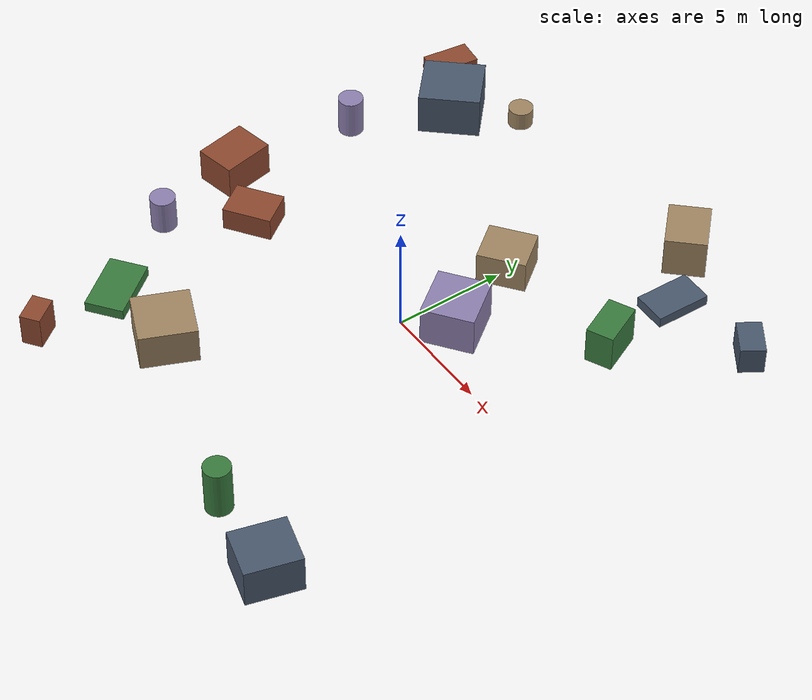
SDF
<sdf version="1.10">
 <world name="robotx_task1_uav_view">
  <gravity>0 0 -9.81</gravity>
  <physics name="physics" type="ode">
   <max_step_size>0.002</max_step_size>
   <real_time_factor>1.0</real_time_factor>
  </physics>
  <scene>
   <ambient>0.20 0.19 0.17 1.0</ambient>
   <background>0.45 0.48 0.42 1.0</background>
   <shadows>true</shadows>
   <grid>false</grid>
  </scene>
  <light name="sun" type="directional">
   <pose>0 0 300 0 0 0</pose>
   <diffuse>0.60 0.58 0.52 1.0</diffuse>
   <specular>0.30 0.35 0.28 1.0</specular>
   <direction>0.22 -0.10 -1.0</direction>
   <attenuation>
    <range>2500</range>
    <constant>0.85</constant>
    <linear>0.001</linear>
    <quadratic>0.00005</quadratic>
   </attenuation>
  </light>
  <plugin filename="gz-sim-physics-system" name="gz::sim::systems::Physics"/>
  <plugin filename="gz-sim-user-commands-system" name="gz::sim::systems::UserCommands"/>
  <plugin filename="gz-sim-scene-broadcaster-system" name="gz::sim::systems::SceneBroadcaster"/>
  <plugin filename="gz-sim-sensors-system" name="gz::sim::systems::Sensors">
   <render_engine>ogre2</render_engine>
  </plugin>
  <model name="scene_clutter_box_000">
   <static>true</static>
   <pose>-4.544 -8.668 0.865 0 0 1.165346</pose>
   <link name="link">
    <visual name="v">
     <geometry><box><size>2.502 2.488 1.689</size></box></geometry>
     <material><ambient>0.45 0.38 0.32 1.0</ambient><diffuse>0.62 0.52 0.38 1.0</diffuse></material>
    </visual>
   </link>
  </model>
  <model name="scene_clutter_box_001">
   <static>true</static>
   <pose>-9.559 9.454 0.991 0 0 -2.302431</pose>
   <link name="link">
    <visual name="v">
     <geometry><box><size>2.738 2.623 1.943</size></box></geometry>
     <material><ambient>0.18 0.22 0.28 1.0</ambient><diffuse>0.28 0.34 0.42 1.0</diffuse></material>
    </visual>
   </link>
  </model>
  <model name="scene_clutter_box_002">
   <static>true</static>
   <pose>-8.680 -1.681 0.558 0 0 2.184758</pose>
   <link name="link">
    <visual name="v">
     <geometry><box><size>1.671 2.197 1.077</size></box></geometry>
     <material><ambient>0.35 0.16 0.12 1.0</ambient><diffuse>0.55 0.28 0.18 1.0</diffuse></material>
    </visual>
   </link>
  </model>
  <model name="scene_clutter_box_003">
   <static>true</static>
   <pose>6.175 6.151 0.883 0 0 0.440170</pose>
   <link name="link">
    <visual name="v">
     <geometry><box><size>1.216 2.048 1.725</size></box></geometry>
     <material><ambient>0.12 0.30 0.14 1.0</ambient><diffuse>0.22 0.48 0.24 1.0</diffuse></material>
    </visual>
   </link>
  </model>
  <model name="scene_clutter_cyl_004">
   <static>true</static>
   <pose>-11.334 5.180 0.940 0 0 -2.325129</pose>
   <link name="link">
    <visual name="v">
     <geometry><cylinder><radius>0.561</radius><length>1.780</length></cylinder></geometry>
     <material><ambient>0.40 0.35 0.50 1.0</ambient><diffuse>0.55 0.50 0.68 1.0</diffuse></material>
    </visual>
   </link>
  </model>
  <model name="scene_clutter_box_005">
   <static>true</static>
   <pose>0.023 5.449 0.766 0 0 2.221305</pose>
   <link name="link">
    <visual name="v">
     <geometry><box><size>1.942 2.159 1.492</size></box></geometry>
     <material><ambient>0.45 0.38 0.32 1.0</ambient><diffuse>0.62 0.52 0.38 1.0</diffuse></material>
    </visual>
   </link>
  </model>
  <model name="scene_clutter_box_006">
   <static>true</static>
   <pose>5.642 9.917 0.266 0 0 -1.591103</pose>
   <link name="link">
    <visual name="v">
     <geometry><box><size>2.480 1.552 0.493</size></box></geometry>
     <material><ambient>0.18 0.22 0.28 1.0</ambient><diffuse>0.28 0.34 0.42 1.0</diffuse></material>
    </visual>
   </link>
  </model>
  <model name="scene_clutter_box_007">
   <static>true</static>
   <pose>-12.198 11.273 0.331 0 0 -1.701549</pose>
   <link name="link">
    <visual name="v">
     <geometry><box><size>2.126 1.265 0.622</size></box></geometry>
     <material><ambient>0.35 0.16 0.12 1.0</ambient><diffuse>0.55 0.28 0.18 1.0</diffuse></material>
    </visual>
   </link>
  </model>
  <model name="scene_clutter_box_008">
   <static>true</static>
   <pose>-8.265 -8.809 0.261 0 0 -0.922163</pose>
   <link name="link">
    <visual name="v">
     <geometry><box><size>2.818 1.723 0.483</size></box></geometry>
     <material><ambient>0.12 0.30 0.14 1.0</ambient><diffuse>0.22 0.48 0.24 1.0</diffuse></material>
    </visual>
   </link>
  </model>
  <model name="scene_clutter_cyl_009">
   <static>true</static>
   <pose>-10.736 -4.968 0.841 0 0 -0.373677</pose>
   <link name="link">
    <visual name="v">
     <geometry><cylinder><radius>0.565</radius><length>1.581</length></cylinder></geometry>
     <material><ambient>0.40 0.35 0.50 1.0</ambient><diffuse>0.55 0.50 0.68 1.0</diffuse></material>
    </visual>
   </link>
  </model>
  <model name="scene_clutter_cyl_010">
   <static>true</static>
   <pose>-7.352 11.669 0.484 0 0 -0.756055</pose>
   <link name="link">
    <visual name="v">
     <geometry><cylinder><radius>0.556</radius><length>0.868</length></cylinder></geometry>
     <material><ambient>0.45 0.38 0.32 1.0</ambient><diffuse>0.62 0.52 0.38 1.0</diffuse></material>
    </visual>
   </link>
  </model>
  <model name="scene_clutter_box_011">
   <static>true</static>
   <pose>9.853 10.558 0.647 0 0 2.560171</pose>
   <link name="link">
    <visual name="v">
     <geometry><box><size>1.651 1.082 1.254</size></box></geometry>
     <material><ambient>0.18 0.22 0.28 1.0</ambient><diffuse>0.28 0.34 0.42 1.0</diffuse></material>
    </visual>
   </link>
  </model>
  <model name="scene_clutter_box_012">
   <static>true</static>
   <pose>-8.004 -12.715 0.771 0 0 -0.940282</pose>
   <link name="link">
    <visual name="v">
     <geometry><box><size>1.320 0.908 1.501</size></box></geometry>
     <material><ambient>0.35 0.16 0.12 1.0</ambient><diffuse>0.55 0.28 0.18 1.0</diffuse></material>
    </visual>
   </link>
  </model>
  <model name="scene_clutter_cyl_013">
   <static>true</static>
   <pose>4.276 -11.623 1.197 0 0 -1.896973</pose>
   <link name="link">
    <visual name="v">
     <geometry><cylinder><radius>0.585</radius><length>2.294</length></cylinder></geometry>
     <material><ambient>0.12 0.30 0.14 1.0</ambient><diffuse>0.22 0.48 0.24 1.0</diffuse></material>
    </visual>
   </link>
  </model>
  <model name="scene_clutter_box_014">
   <static>true</static>
   <pose>1.551 1.683 0.927 0 0 -0.932582</pose>
   <link name="link">
    <visual name="v">
     <geometry><box><size>2.455 2.335 1.814</size></box></geometry>
     <material><ambient>0.40 0.35 0.50 1.0</ambient><diffuse>0.55 0.50 0.68 1.0</diffuse></material>
    </visual>
   </link>
  </model>
  <model name="scene_clutter_box_015">
   <static>true</static>
   <pose>3.678 12.225 0.956 0 0 -2.334185</pose>
   <link name="link">
    <visual name="v">
     <geometry><box><size>1.829 2.297 1.873</size></box></geometry>
     <material><ambient>0.45 0.38 0.32 1.0</ambient><diffuse>0.62 0.52 0.38 1.0</diffuse></material>
    </visual>
   </link>
  </model>
  <model name="scene_clutter_box_016">
   <static>true</static>
   <pose>8.271 -12.009 0.909 0 0 -0.269169</pose>
   <link name="link">
    <visual name="v">
     <geometry><box><size>2.231 2.431 1.777</size></box></geometry>
     <material><ambient>0.18 0.22 0.28 1.0</ambient><diffuse>0.28 0.34 0.42 1.0</diffuse></material>
    </visual>
   </link>
  </model>
  <model name="scene_clutter_box_017">
   <static>true</static>
   <pose>-11.682 -0.725 0.806 0 0 0.193397</pose>
   <link name="link">
    <visual name="v">
     <geometry><box><size>1.837 2.373 1.572</size></box></geometry>
     <material><ambient>0.35 0.16 0.12 1.0</ambient><diffuse>0.55 0.28 0.18 1.0</diffuse></material>
    </visual>
   </link>
  </model>
  <model name="uav_dataset_camera">
   <static>false</static>
   <pose>0 0 26 0 0 0</pose>
   <plugin filename="librobotx_overhead_motion_plugin.dylib" name="robotx::OverheadMotionPlugin">
    <radius_x_m>9.26903</radius_x_m>
    <radius_y_m>11.45306</radius_y_m>
    <angular_speed_rad_s>0.059069</angular_speed_rad_s>
    <phase_rad>0.895659</phase_rad>
    <z_wobble_m>0.04044</z_wobble_m>
    <z_wobble_hz>0.05911</z_wobble_hz>
    <z_wobble_phase_rad>1.365243</z_wobble_phase_rad>
   </plugin>
   <link name="camera_link">
    <gravity>false</gravity>
    <sensor name="top_down_rgb" type="camera">
     <always_on>true</always_on>
     <update_rate>20</update_rate>
     <pose>0 0 0 0 1.57079632679 0</pose>
     <camera>
      <horizontal_fov>1.05</horizontal_fov>
      <image><width>1920</width><height>1080</height><format>R8G8B8</format></image>
      <clip><near>0.2</near><far>600</far></clip>
     </camera>
     <topic>/robotx/uav/camera/image_raw</topic>
     <visualize>true</visualize>
    </sensor>
   </link>
  </model>
 </world>
</sdf>
